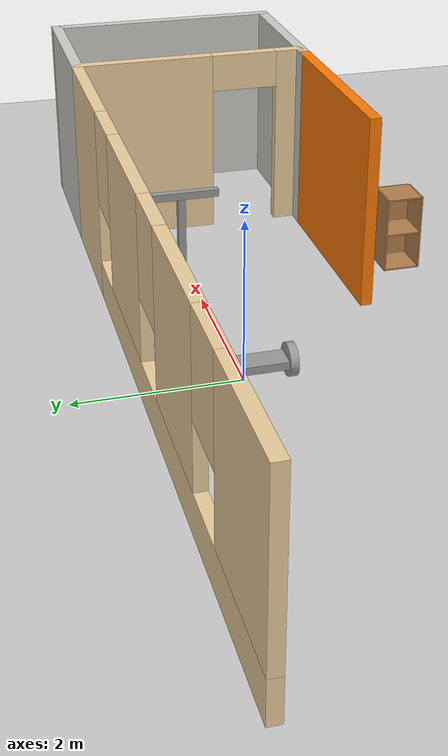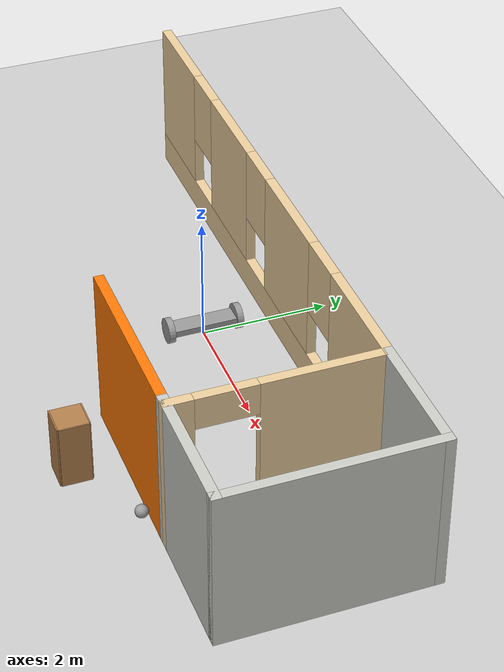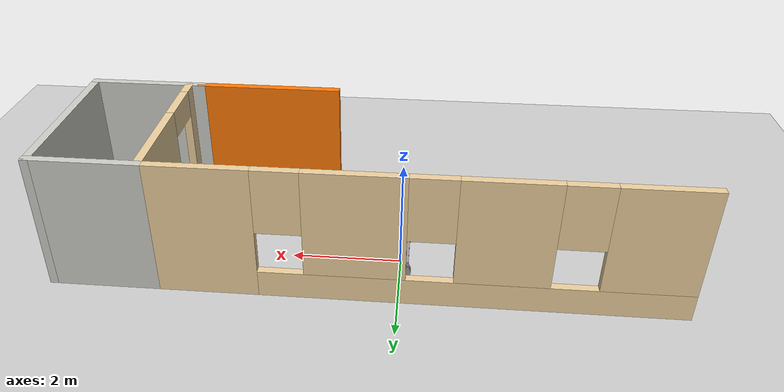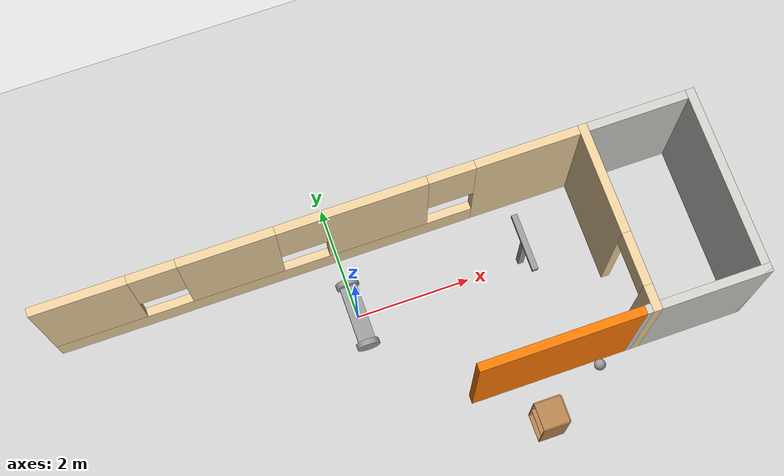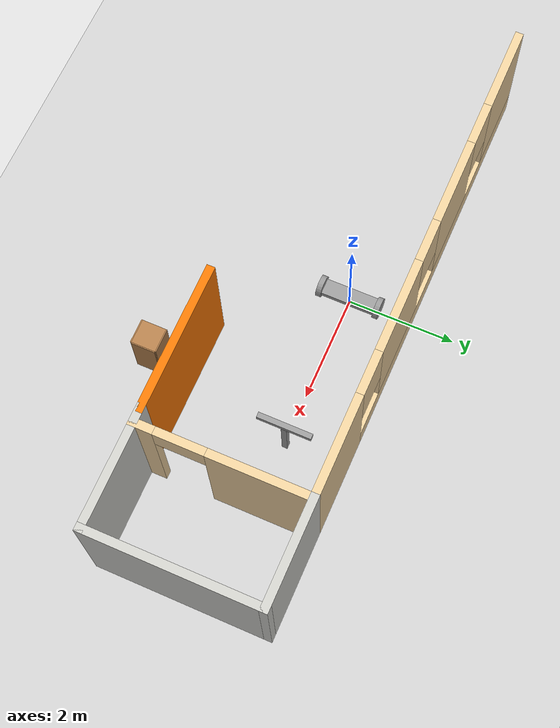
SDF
<sdf version="1.6">
 <world name="default">
  <model name="ground_plane">
   <static>1</static>
   <link name="link">
    <collision name="collision">
     <geometry><plane><normal>0 0 1</normal><size>100 100</size></plane></geometry>
     <surface>
      <contact><collide_bitmask>65535</collide_bitmask></contact>
      <friction><ode><mu>100</mu><mu2>50</mu2></ode></friction>
     </surface>
    </collision>
    <visual name="visual">
     <cast_shadows>0</cast_shadows>
     <geometry><plane><normal>0 0 1</normal><size>100 100</size></plane></geometry>
     <material>
      <script><uri>file://media/materials/scripts/gazebo.material</uri><name>Gazebo/Grey</name></script>
     </material>
    </visual>
   </link>
  </model>
  <model name="robot">
   <link name="link_0">
    <inertial>
     <mass>1.10599</mass>
     <inertia>
      <ixx>0.204905</ixx>
      <ixy>0</ixy>
      <ixz>0</ixz>
      <iyy>0.204905</iyy>
      <iyz>0</iyz>
      <izz>0.184332</izz>
     </inertia>
    </inertial>
    <visual name="visual">
     <geometry><box><size>0.3 1 0.1</size></box></geometry>
     <material>
      <lighting>1</lighting>
      <script><uri>file://media/materials/scripts/gazebo.material</uri><name>Gazebo/Grey</name></script>
      <shader type="pixel"><normal_map>__default__</normal_map></shader>
      <ambient>0.3 0.3 0.3 1</ambient>
      <diffuse>0.7 0.7 0.7 1</diffuse>
      <specular>0.01 0.01 0.01 1</specular>
      <emissive>0 0 0 1</emissive>
     </material>
    </visual>
    <collision name="collision">
     <geometry><box><size>0.3 1 0.1</size></box></geometry>
     <surface>
      <friction>
       <ode><mu>1</mu><mu2>1</mu2><fdir1>0 0 0</fdir1><slip1>0</slip1><slip2>0</slip2></ode>
       <torsional>
        <coefficient>1</coefficient>
        <patch_radius>0</patch_radius>
        <surface_radius>0</surface_radius>
        <use_patch_radius>1</use_patch_radius>
        <ode><slip>0</slip></ode>
       </torsional>
      </friction>
      <bounce><restitution_coefficient>0</restitution_coefficient><threshold>1e+06</threshold></bounce>
      <contact>
       <collide_without_contact>0</collide_without_contact>
       <collide_without_contact_bitmask>1</collide_without_contact_bitmask>
       <collide_bitmask>1</collide_bitmask>
       <ode>
        <soft_cfm>0</soft_cfm>
        <soft_erp>0.2</soft_erp>
        <kp>1e+13</kp>
        <kd>1</kd>
        <max_vel>0.01</max_vel>
        <min_depth>0</min_depth>
       </ode>
       <bullet>
        <split_impulse>1</split_impulse>
        <split_impulse_penetration_threshold>-0.01</split_impulse_penetration_threshold>
        <soft_cfm>0</soft_cfm>
        <soft_erp>0.2</soft_erp>
        <kp>1e+13</kp>
        <kd>1</kd>
       </bullet>
      </contact>
     </surface>
    </collision>
   </link>
   <link name="link_1">
    <pose>0 -0.550001 0 1.57079 -0 0</pose>
    <inertial>
     <mass>1</mass>
     <inertia><ixx>0.145833</ixx><ixy>0</ixy><ixz>0</ixz><iyy>0.145833</iyy><iyz>0</iyz><izz>0.125</izz></inertia>
    </inertial>
    <visual name="visual">
     <geometry><cylinder><radius>0.2</radius><length>0.1</length></cylinder></geometry>
     <material>
      <lighting>1</lighting>
      <script><uri>file://media/materials/scripts/gazebo.material</uri><name>Gazebo/Grey</name></script>
      <shader type="pixel"><normal_map>__default__</normal_map></shader>
      <ambient>0.3 0.3 0.3 1</ambient>
      <diffuse>0.7 0.7 0.7 1</diffuse>
      <specular>0.01 0.01 0.01 1</specular>
      <emissive>0 0 0 1</emissive>
     </material>
    </visual>
    <collision name="collision">
     <geometry><cylinder><radius>0.2</radius><length>0.1</length></cylinder></geometry>
     <surface>
      <friction>
       <ode><mu>1</mu><mu2>1</mu2><fdir1>0 0 0</fdir1><slip1>0</slip1><slip2>0</slip2></ode>
       <torsional>
        <coefficient>1</coefficient>
        <patch_radius>0</patch_radius>
        <surface_radius>0</surface_radius>
        <use_patch_radius>1</use_patch_radius>
        <ode><slip>0</slip></ode>
       </torsional>
      </friction>
      <bounce><restitution_coefficient>0</restitution_coefficient><threshold>1e+06</threshold></bounce>
      <contact>
       <collide_without_contact>0</collide_without_contact>
       <collide_without_contact_bitmask>1</collide_without_contact_bitmask>
       <collide_bitmask>1</collide_bitmask>
       <ode>
        <soft_cfm>0</soft_cfm>
        <soft_erp>0.2</soft_erp>
        <kp>1e+13</kp>
        <kd>1</kd>
        <max_vel>0.01</max_vel>
        <min_depth>0</min_depth>
       </ode>
       <bullet>
        <split_impulse>1</split_impulse>
        <split_impulse_penetration_threshold>-0.01</split_impulse_penetration_threshold>
        <soft_cfm>0</soft_cfm>
        <soft_erp>0.2</soft_erp>
        <kp>1e+13</kp>
        <kd>1</kd>
       </bullet>
      </contact>
     </surface>
    </collision>
   </link>
   <link name="link_1_clone">
    <pose>0 0.550001 0 1.57079 -0 0</pose>
    <inertial>
     <mass>1</mass>
     <inertia><ixx>0.145833</ixx><ixy>0</ixy><ixz>0</ixz><iyy>0.145833</iyy><iyz>0</iyz><izz>0.125</izz></inertia>
    </inertial>
    <visual name="visual">
     <geometry><cylinder><radius>0.2</radius><length>0.1</length></cylinder></geometry>
     <material>
      <lighting>1</lighting>
      <script><uri>file://media/materials/scripts/gazebo.material</uri><name>Gazebo/Grey</name></script>
      <shader type="pixel"><normal_map>__default__</normal_map></shader>
      <ambient>0.3 0.3 0.3 1</ambient>
      <diffuse>0.7 0.7 0.7 1</diffuse>
      <specular>0.01 0.01 0.01 1</specular>
      <emissive>0 0 0 1</emissive>
     </material>
    </visual>
    <collision name="collision">
     <geometry><cylinder><radius>0.2</radius><length>0.1</length></cylinder></geometry>
     <surface>
      <friction>
       <ode><mu>1</mu><mu2>1</mu2><fdir1>0 0 0</fdir1><slip1>0</slip1><slip2>0</slip2></ode>
       <torsional>
        <coefficient>1</coefficient>
        <patch_radius>0</patch_radius>
        <surface_radius>0</surface_radius>
        <use_patch_radius>1</use_patch_radius>
        <ode><slip>0</slip></ode>
       </torsional>
      </friction>
      <bounce><restitution_coefficient>0</restitution_coefficient><threshold>1e+06</threshold></bounce>
      <contact>
       <collide_without_contact>0</collide_without_contact>
       <collide_without_contact_bitmask>1</collide_without_contact_bitmask>
       <collide_bitmask>1</collide_bitmask>
       <ode>
        <soft_cfm>0</soft_cfm>
        <soft_erp>0.2</soft_erp>
        <kp>1e+13</kp>
        <kd>1</kd>
        <max_vel>0.01</max_vel>
        <min_depth>0</min_depth>
       </ode>
       <bullet>
        <split_impulse>1</split_impulse>
        <split_impulse_penetration_threshold>-0.01</split_impulse_penetration_threshold>
        <soft_cfm>0</soft_cfm>
        <soft_erp>0.2</soft_erp>
        <kp>1e+13</kp>
        <kd>1</kd>
       </bullet>
      </contact>
     </surface>
    </collision>
   </link>
   <joint name="link_0_JOINT_0" type="revolute">
    <parent>link_0</parent>
    <child>link_1</child>
    <axis>
     <xyz>0 0 1</xyz>
     <use_parent_model_frame>0</use_parent_model_frame>
     <limit>
      <lower>-1.79769e+308</lower>
      <upper>1.79769e+308</upper>
      <effort>-1</effort>
      <velocity>-1</velocity>
     </limit>
     <dynamics>
      <spring_reference>0</spring_reference>
      <spring_stiffness>0</spring_stiffness>
      <damping>0</damping>
     </dynamics>
    </axis>
    <physics>
     <ode><limit><cfm>0</cfm><erp>0.2</erp></limit><suspension><cfm>0</cfm><erp>0.2</erp></suspension></ode>
    </physics>
   </joint>
   <joint name="link_0_JOINT_1" type="revolute">
    <parent>link_0</parent>
    <child>link_1_clone</child>
    <axis>
     <xyz>0 0 1</xyz>
     <use_parent_model_frame>0</use_parent_model_frame>
     <limit>
      <lower>-1.79769e+308</lower>
      <upper>1.79769e+308</upper>
      <effort>-1</effort>
      <velocity>-1</velocity>
     </limit>
     <dynamics>
      <spring_reference>0</spring_reference>
      <spring_stiffness>0</spring_stiffness>
      <damping>0</damping>
     </dynamics>
    </axis>
    <physics>
     <ode><limit><cfm>0</cfm><erp>0.2</erp></limit><suspension><cfm>0</cfm><erp>0.2</erp></suspension></ode>
    </physics>
   </joint>
   <static>0</static>
   <pose>0 -1e-06 0.2 0 -0 0</pose>
  </model>
  <model name="anotherrone_clone_0">
   <link name="link_0_clone">
    <pose>1.00397 -1.20326 1.05 1.57079 -0 0</pose>
    <inertial>
     <mass>1</mass>
     <inertia>
      <ixx>0.166667</ixx>
      <ixy>0</ixy>
      <ixz>0</ixz>
      <iyy>0.166667</iyy>
      <iyz>0</iyz>
      <izz>0.166667</izz>
     </inertia>
    </inertial>
    <visual name="visual">
     <geometry><box><size>0.1 0.1 1</size></box></geometry>
     <material>
      <lighting>1</lighting>
      <script><uri>file://media/materials/scripts/gazebo.material</uri><name>Gazebo/Grey</name></script>
      <shader type="pixel"><normal_map>__default__</normal_map></shader>
      <ambient>0.3 0.3 0.3 1</ambient>
      <diffuse>0.7 0.7 0.7 1</diffuse>
      <specular>0.01 0.01 0.01 1</specular>
      <emissive>0 0 0 1</emissive>
     </material>
    </visual>
    <collision name="collision">
     <geometry><box><size>0.1 0.1 1</size></box></geometry>
     <surface>
      <friction>
       <ode><mu>1</mu><mu2>1</mu2><fdir1>0 0 0</fdir1><slip1>0</slip1><slip2>0</slip2></ode>
       <torsional>
        <coefficient>1</coefficient>
        <patch_radius>0</patch_radius>
        <surface_radius>0</surface_radius>
        <use_patch_radius>1</use_patch_radius>
        <ode><slip>0</slip></ode>
       </torsional>
      </friction>
      <bounce><restitution_coefficient>0</restitution_coefficient><threshold>1e+06</threshold></bounce>
      <contact>
       <collide_without_contact>0</collide_without_contact>
       <collide_without_contact_bitmask>1</collide_without_contact_bitmask>
       <collide_bitmask>1</collide_bitmask>
       <ode>
        <soft_cfm>0</soft_cfm>
        <soft_erp>0.2</soft_erp>
        <kp>1e+13</kp>
        <kd>1</kd>
        <max_vel>0.01</max_vel>
        <min_depth>0</min_depth>
       </ode>
       <bullet>
        <split_impulse>1</split_impulse>
        <split_impulse_penetration_threshold>-0.01</split_impulse_penetration_threshold>
        <soft_cfm>0</soft_cfm>
        <soft_erp>0.2</soft_erp>
        <kp>1e+13</kp>
        <kd>1</kd>
       </bullet>
      </contact>
     </surface>
    </collision>
   </link>
   <link name="link_0_clone_clone">
    <pose>1.00397 -1.20326 0.499999 0 -0 0</pose>
    <inertial>
     <mass>1</mass>
     <inertia>
      <ixx>0.166667</ixx>
      <ixy>0</ixy>
      <ixz>0</ixz>
      <iyy>0.166667</iyy>
      <iyz>0</iyz>
      <izz>0.166667</izz>
     </inertia>
    </inertial>
    <visual name="visual">
     <geometry><box><size>0.1 0.1 1</size></box></geometry>
     <material>
      <lighting>1</lighting>
      <script><uri>file://media/materials/scripts/gazebo.material</uri><name>Gazebo/Grey</name></script>
      <shader type="pixel"><normal_map>__default__</normal_map></shader>
      <ambient>0.3 0.3 0.3 1</ambient>
      <diffuse>0.7 0.7 0.7 1</diffuse>
      <specular>0.01 0.01 0.01 1</specular>
      <emissive>0 0 0 1</emissive>
     </material>
    </visual>
    <collision name="collision">
     <geometry><box><size>0.1 0.1 1</size></box></geometry>
     <surface>
      <friction>
       <ode><mu>1</mu><mu2>1</mu2><fdir1>0 0 0</fdir1><slip1>0</slip1><slip2>0</slip2></ode>
       <torsional>
        <coefficient>1</coefficient>
        <patch_radius>0</patch_radius>
        <surface_radius>0</surface_radius>
        <use_patch_radius>1</use_patch_radius>
        <ode><slip>0</slip></ode>
       </torsional>
      </friction>
      <bounce><restitution_coefficient>0</restitution_coefficient><threshold>1e+06</threshold></bounce>
      <contact>
       <collide_without_contact>0</collide_without_contact>
       <collide_without_contact_bitmask>1</collide_without_contact_bitmask>
       <collide_bitmask>1</collide_bitmask>
       <ode>
        <soft_cfm>0</soft_cfm>
        <soft_erp>0.2</soft_erp>
        <kp>1e+13</kp>
        <kd>1</kd>
        <max_vel>0.01</max_vel>
        <min_depth>0</min_depth>
       </ode>
       <bullet>
        <split_impulse>1</split_impulse>
        <split_impulse_penetration_threshold>-0.01</split_impulse_penetration_threshold>
        <soft_cfm>0</soft_cfm>
        <soft_erp>0.2</soft_erp>
        <kp>1e+13</kp>
        <kd>1</kd>
       </bullet>
      </contact>
     </surface>
    </collision>
   </link>
   <joint name="link_0_clone_clone_JOINT_0" type="revolute">
    <parent>link_0_clone_clone</parent>
    <child>link_0_clone</child>
    <axis>
     <xyz>0 -1 0</xyz>
     <use_parent_model_frame>0</use_parent_model_frame>
     <limit>
      <lower>-1.79769e+308</lower>
      <upper>1.79769e+308</upper>
      <effort>-1</effort>
      <velocity>-1</velocity>
     </limit>
     <dynamics>
      <spring_reference>0</spring_reference>
      <spring_stiffness>0</spring_stiffness>
      <damping>0</damping>
     </dynamics>
    </axis>
    <physics>
     <ode><limit><cfm>0</cfm><erp>0.2</erp></limit><suspension><cfm>0</cfm><erp>0.2</erp></suspension></ode>
    </physics>
   </joint>
   <static>0</static>
   <pose>1.95544 1.23394 1e-05 4e-06 4e-06 4.4e-05</pose>
  </model>
  <model name="my_ball">
   <link name="link">
    <inertial>
     <mass>1</mass>
     <inertia><ixx>0.1</ixx><ixy>0</ixy><ixz>0</ixz><iyy>0.1</iyy><iyz>0</iyz><izz>0.1</izz></inertia>
    </inertial>
    <visual name="visual">
     <geometry><sphere><radius>0.1</radius></sphere></geometry>
     <material>
      <script><name>Gazebo/Grey</name><uri>file://media/materials/scripts/gazebo.material</uri></script>
      <shader type="pixel"><normal_map>__default__</normal_map></shader>
      <ambient>1 1 1 1</ambient>
      <diffuse>1 1 1 1</diffuse>
      <specular>1 1 1 1</specular>
      <emissive>1 1 1 1</emissive>
     </material>
    </visual>
    <collision name="collision">
     <geometry><sphere><radius>0.1</radius></sphere></geometry>
     <surface>
      <friction>
       <ode><mu>1</mu><mu2>1</mu2><fdir1>0 0 0</fdir1><slip1>0</slip1><slip2>0</slip2></ode>
       <torsional>
        <coefficient>1</coefficient>
        <patch_radius>0</patch_radius>
        <surface_radius>0</surface_radius>
        <use_patch_radius>1</use_patch_radius>
        <ode><slip>0</slip></ode>
       </torsional>
      </friction>
      <bounce><restitution_coefficient>0</restitution_coefficient><threshold>1e+06</threshold></bounce>
      <contact>
       <collide_without_contact>0</collide_without_contact>
       <collide_without_contact_bitmask>1</collide_without_contact_bitmask>
       <collide_bitmask>1</collide_bitmask>
       <ode>
        <soft_cfm>0</soft_cfm>
        <soft_erp>0.2</soft_erp>
        <kp>1e+13</kp>
        <kd>1</kd>
        <max_vel>0.01</max_vel>
        <min_depth>0</min_depth>
       </ode>
       <bullet>
        <split_impulse>1</split_impulse>
        <split_impulse_penetration_threshold>-0.01</split_impulse_penetration_threshold>
        <soft_cfm>0</soft_cfm>
        <soft_erp>0.2</soft_erp>
        <kp>1e+13</kp>
        <kd>1</kd>
       </bullet>
      </contact>
     </surface>
    </collision>
   </link>
   <static>0</static>
   <pose>3.57794 -2.15315 0.1 0.017034 -0 0</pose>
  </model>
  <model name="cabinet">
   <static>1</static>
   <link name="cabinet_bottom_plate">
    <inertial>
     <pose>0 0 -1 0 -0 0</pose>
     <inertia><ixx>2.05</ixx><ixy>0</ixy><ixz>0</ixz><iyy>2.05</iyy><iyz>0</iyz><izz>2.05</izz></inertia>
     <mass>25</mass>
    </inertial>
    <collision name="cabinet_bottom_plate_geom">
     <pose>0 0 0.01 0 -0 0</pose>
     <geometry><box><size>0.45 0.45 0.02</size></box></geometry>
    </collision>
    <visual name="cabinet_bottom_plate_geom_visual">
     <pose>0 0 0.01 0 -0 0</pose>
     <geometry><box><size>0.45 0.45 0.02</size></box></geometry>
     <material>
      <script><uri>file://media/materials/scripts/gazebo.material</uri><name>Gazebo/Wood</name></script>
     </material>
    </visual>
    <collision name="cabinet_bottom_plate_geom_cabinet_back_plate">
     <pose>0.235 0 0.51 0 -0 0</pose>
     <geometry><box><size>0.02 0.45 1.02</size></box></geometry>
    </collision>
    <visual name="cabinet_bottom_plate_geom_cabinet_back_plate_visual">
     <pose>0.235 0 0.51 0 -0 0</pose>
     <geometry><box><size>0.02 0.45 1.02</size></box></geometry>
     <material>
      <script><uri>file://media/materials/scripts/gazebo.material</uri><name>Gazebo/Wood</name></script>
     </material>
    </visual>
    <collision name="cabinet_bottom_plate_geom_cabinet_left_plate">
     <pose>0 0.235 0.51 0 -0 0</pose>
     <geometry><box><size>0.45 0.02 1.02</size></box></geometry>
    </collision>
    <visual name="cabinet_bottom_plate_geom_cabinet_left_plate_visual">
     <pose>0 0.235 0.51 0 -0 0</pose>
     <geometry><box><size>0.45 0.02 1.02</size></box></geometry>
     <material>
      <script><uri>file://media/materials/scripts/gazebo.material</uri><name>Gazebo/Wood</name></script>
     </material>
    </visual>
    <collision name="cabinet_bottom_plate_geom_cabinet_middle_plate">
     <pose>0 0 0.51 0 -0 0</pose>
     <geometry><box><size>0.45 0.45 0.02</size></box></geometry>
    </collision>
    <visual name="cabinet_bottom_plate_geom_cabinet_middle_plate_visual">
     <pose>0 0 0.51 0 -0 0</pose>
     <geometry><box><size>0.45 0.45 0.02</size></box></geometry>
     <material>
      <script><uri>file://media/materials/scripts/gazebo.material</uri><name>Gazebo/Wood</name></script>
     </material>
    </visual>
    <collision name="cabinet_bottom_plate_geom_cabinet_right_plate">
     <pose>0 -0.235 0.51 0 -0 0</pose>
     <geometry><box><size>0.45 0.02 1.02</size></box></geometry>
    </collision>
    <visual name="cabinet_bottom_plate_geom_cabinet_right_plate_visual">
     <pose>0 -0.235 0.51 0 -0 0</pose>
     <geometry><box><size>0.45 0.02 1.02</size></box></geometry>
     <material>
      <script><uri>file://media/materials/scripts/gazebo.material</uri><name>Gazebo/Wood</name></script>
     </material>
    </visual>
    <collision name="cabinet_bottom_plate_geom_cabinet_top_plate">
     <pose>0 0 1.01 0 -0 0</pose>
     <geometry><box><size>0.45 0.45 0.02</size></box></geometry>
    </collision>
    <visual name="cabinet_bottom_plate_geom_cabinet_top_plate_visual">
     <pose>0 0 1.01 0 -0 0</pose>
     <geometry><box><size>0.45 0.45 0.02</size></box></geometry>
     <material>
      <script><uri>file://media/materials/scripts/gazebo.material</uri><name>Gazebo/Wood</name></script>
     </material>
    </visual>
   </link>
   <pose>2.37507 -2.78574 0 0 -0 0</pose>
  </model>
  <model name="someHouse">
   <link name="Wall_26">
    <pose>3.375 1.05 0 0 -0 3.14159</pose>
    <visual name="Wall_26_Visual">
     <pose>0 0 1.25 0 -0 0</pose>
     <geometry><box><size>2.75 0.15 2.5</size></box></geometry>
     <material>
      <script><uri>file://media/materials/scripts/gazebo.material</uri><name>Gazebo/Grey</name></script>
      <ambient>0.996078 0.47451 0.0196078 1</ambient>
      <shader type="pixel"/>
      <diffuse>0.7 0.7 0.7 1</diffuse>
      <specular>0.01 0.01 0.01 1</specular>
      <emissive>0 0 0 1</emissive>
     </material>
     <meta><layer>0</layer></meta>
    </visual>
    <collision name="Wall_26_Collision">
     <pose>0 0 1.25 0 -0 0</pose>
     <geometry><box><size>2.75 0.15 2.5</size></box></geometry>
     <surface>
      <friction>
       <ode><mu>1</mu><mu2>1</mu2><fdir1>0 0 0</fdir1><slip1>0</slip1><slip2>0</slip2></ode>
       <torsional>
        <coefficient>1</coefficient>
        <patch_radius>0</patch_radius>
        <surface_radius>0</surface_radius>
        <use_patch_radius>1</use_patch_radius>
        <ode><slip>0</slip></ode>
       </torsional>
      </friction>
      <bounce><restitution_coefficient>0</restitution_coefficient><threshold>1e+06</threshold></bounce>
      <contact>
       <collide_without_contact>0</collide_without_contact>
       <collide_without_contact_bitmask>1</collide_without_contact_bitmask>
       <collide_bitmask>1</collide_bitmask>
       <ode>
        <soft_cfm>0</soft_cfm>
        <soft_erp>0.2</soft_erp>
        <kp>1e+13</kp>
        <kd>1</kd>
        <max_vel>0.01</max_vel>
        <min_depth>0</min_depth>
       </ode>
       <bullet>
        <split_impulse>1</split_impulse>
        <split_impulse_penetration_threshold>-0.01</split_impulse_penetration_threshold>
        <soft_cfm>0</soft_cfm>
        <soft_erp>0.2</soft_erp>
        <kp>1e+13</kp>
        <kd>1</kd>
       </bullet>
      </contact>
     </surface>
    </collision>
   </link>
   <link name="Wall_32">
    <pose>5.725 1.05 0 0 -0 0</pose>
    <visual name="Wall_32_Visual">
     <pose>0 0 1.25 0 -0 0</pose>
     <geometry><box><size>2.25 0.15 2.5</size></box></geometry>
     <material>
      <script><uri>file://media/materials/scripts/gazebo.material</uri><name>Gazebo/CeilingTiled</name></script>
      <ambient>0.760784 0.662745 0.627451 1</ambient>
      <shader type="pixel"/>
      <diffuse>1 1 1 1</diffuse>
      <specular>0 0 0 1</specular>
      <emissive>0 0 0 1</emissive>
     </material>
     <meta><layer>0</layer></meta>
    </visual>
    <collision name="Wall_32_Collision">
     <pose>0 0 1.25 0 -0 0</pose>
     <geometry><box><size>2.25 0.15 2.5</size></box></geometry>
     <surface>
      <friction>
       <ode><mu>1</mu><mu2>1</mu2><fdir1>0 0 0</fdir1><slip1>0</slip1><slip2>0</slip2></ode>
       <torsional>
        <coefficient>1</coefficient>
        <patch_radius>0</patch_radius>
        <surface_radius>0</surface_radius>
        <use_patch_radius>1</use_patch_radius>
        <ode><slip>0</slip></ode>
       </torsional>
      </friction>
      <bounce><restitution_coefficient>0</restitution_coefficient><threshold>1e+06</threshold></bounce>
      <contact>
       <collide_without_contact>0</collide_without_contact>
       <collide_without_contact_bitmask>1</collide_without_contact_bitmask>
       <collide_bitmask>1</collide_bitmask>
       <ode>
        <soft_cfm>0</soft_cfm>
        <soft_erp>0.2</soft_erp>
        <kp>1e+13</kp>
        <kd>1</kd>
        <max_vel>0.01</max_vel>
        <min_depth>0</min_depth>
       </ode>
       <bullet>
        <split_impulse>1</split_impulse>
        <split_impulse_penetration_threshold>-0.01</split_impulse_penetration_threshold>
        <soft_cfm>0</soft_cfm>
        <soft_erp>0.2</soft_erp>
        <kp>1e+13</kp>
        <kd>1</kd>
       </bullet>
      </contact>
     </surface>
    </collision>
   </link>
   <link name="Wall_33">
    <pose>6.775 2.6 0 0 -0 1.5708</pose>
    <visual name="Wall_33_Visual">
     <pose>0 0 1.25 0 -0 0</pose>
     <geometry><box><size>3.25 0.15 2.5</size></box></geometry>
     <material>
      <script><uri>file://media/materials/scripts/gazebo.material</uri><name>Gazebo/CeilingTiled</name></script>
      <ambient>0.760784 0.662745 0.627451 1</ambient>
      <shader type="pixel"/>
      <diffuse>1 1 1 1</diffuse>
      <specular>0 0 0 1</specular>
      <emissive>0 0 0 1</emissive>
     </material>
     <meta><layer>0</layer></meta>
    </visual>
    <collision name="Wall_33_Collision">
     <pose>0 0 1.25 0 -0 0</pose>
     <geometry><box><size>3.25 0.15 2.5</size></box></geometry>
     <surface>
      <friction>
       <ode><mu>1</mu><mu2>1</mu2><fdir1>0 0 0</fdir1><slip1>0</slip1><slip2>0</slip2></ode>
       <torsional>
        <coefficient>1</coefficient>
        <patch_radius>0</patch_radius>
        <surface_radius>0</surface_radius>
        <use_patch_radius>1</use_patch_radius>
        <ode><slip>0</slip></ode>
       </torsional>
      </friction>
      <bounce><restitution_coefficient>0</restitution_coefficient><threshold>1e+06</threshold></bounce>
      <contact>
       <collide_without_contact>0</collide_without_contact>
       <collide_without_contact_bitmask>1</collide_without_contact_bitmask>
       <collide_bitmask>1</collide_bitmask>
       <ode>
        <soft_cfm>0</soft_cfm>
        <soft_erp>0.2</soft_erp>
        <kp>1e+13</kp>
        <kd>1</kd>
        <max_vel>0.01</max_vel>
        <min_depth>0</min_depth>
       </ode>
       <bullet>
        <split_impulse>1</split_impulse>
        <split_impulse_penetration_threshold>-0.01</split_impulse_penetration_threshold>
        <soft_cfm>0</soft_cfm>
        <soft_erp>0.2</soft_erp>
        <kp>1e+13</kp>
        <kd>1</kd>
       </bullet>
      </contact>
     </surface>
    </collision>
   </link>
   <link name="Wall_34">
    <pose>5.85 4.15 0 0 -0 3.14159</pose>
    <visual name="Wall_34_Visual">
     <pose>0 0 1.25 0 -0 0</pose>
     <geometry><box><size>2 0.15 2.5</size></box></geometry>
     <material>
      <script><uri>file://media/materials/scripts/gazebo.material</uri><name>Gazebo/CeilingTiled</name></script>
      <ambient>0.760784 0.662745 0.627451 1</ambient>
      <shader type="pixel"/>
      <diffuse>1 1 1 1</diffuse>
      <specular>0 0 0 1</specular>
      <emissive>0 0 0 1</emissive>
     </material>
     <meta><layer>0</layer></meta>
    </visual>
    <collision name="Wall_34_Collision">
     <pose>0 0 1.25 0 -0 0</pose>
     <geometry><box><size>2 0.15 2.5</size></box></geometry>
     <surface>
      <friction>
       <ode><mu>1</mu><mu2>1</mu2><fdir1>0 0 0</fdir1><slip1>0</slip1><slip2>0</slip2></ode>
       <torsional>
        <coefficient>1</coefficient>
        <patch_radius>0</patch_radius>
        <surface_radius>0</surface_radius>
        <use_patch_radius>1</use_patch_radius>
        <ode><slip>0</slip></ode>
       </torsional>
      </friction>
      <bounce><restitution_coefficient>0</restitution_coefficient><threshold>1e+06</threshold></bounce>
      <contact>
       <collide_without_contact>0</collide_without_contact>
       <collide_without_contact_bitmask>1</collide_without_contact_bitmask>
       <collide_bitmask>1</collide_bitmask>
       <ode>
        <soft_cfm>0</soft_cfm>
        <soft_erp>0.2</soft_erp>
        <kp>1e+13</kp>
        <kd>1</kd>
        <max_vel>0.01</max_vel>
        <min_depth>0</min_depth>
       </ode>
       <bullet>
        <split_impulse>1</split_impulse>
        <split_impulse_penetration_threshold>-0.01</split_impulse_penetration_threshold>
        <soft_cfm>0</soft_cfm>
        <soft_erp>0.2</soft_erp>
        <kp>1e+13</kp>
        <kd>1</kd>
       </bullet>
      </contact>
     </surface>
    </collision>
   </link>
   <link name="Wall_35">
    <pose>4.925 2.6 0 0 0 -1.5708</pose>
    <visual name="Wall_35_Visual_0">
     <pose>-0.668512 0 1.25 0 -0 0</pose>
     <geometry><box><size>1.91298 0.15 2.5</size></box></geometry>
     <material>
      <script><uri>file://media/materials/scripts/gazebo.material</uri><name>Gazebo/Grey</name></script>
      <ambient>0.921569 0.807843 0.615686 1</ambient>
      <shader type="pixel"/>
      <diffuse>0.7 0.7 0.7 1</diffuse>
      <specular>0.01 0.01 0.01 1</specular>
      <emissive>0 0 0 1</emissive>
     </material>
     <meta><layer>0</layer></meta>
    </visual>
    <visual name="Wall_35_Visual_1">
     <pose>1.40649 0 1.25 0 -0 0</pose>
     <geometry><box><size>0.437025 0.15 2.5</size></box></geometry>
     <material>
      <script><uri>file://media/materials/scripts/gazebo.material</uri><name>Gazebo/Grey</name></script>
      <ambient>0.921569 0.807843 0.615686 1</ambient>
      <shader type="pixel"/>
      <diffuse>0.7 0.7 0.7 1</diffuse>
      <specular>0.01 0.01 0.01 1</specular>
      <emissive>0 0 0 1</emissive>
     </material>
     <meta><layer>0</layer></meta>
    </visual>
    <visual name="Wall_35_Visual_2">
     <pose>0.737975 0 2.25 0 -0 0</pose>
     <geometry><box><size>0.9 0.15 0.5</size></box></geometry>
     <material>
      <script><uri>file://media/materials/scripts/gazebo.material</uri><name>Gazebo/Grey</name></script>
      <ambient>0.921569 0.807843 0.615686 1</ambient>
      <shader type="pixel"/>
      <diffuse>0.7 0.7 0.7 1</diffuse>
      <specular>0.01 0.01 0.01 1</specular>
      <emissive>0 0 0 1</emissive>
     </material>
     <meta><layer>0</layer></meta>
    </visual>
    <collision name="Wall_35_Collision_0">
     <pose>-0.668512 0 1.25 0 -0 0</pose>
     <geometry><box><size>1.91298 0.15 2.5</size></box></geometry>
     <surface>
      <friction>
       <ode><mu>1</mu><mu2>1</mu2><fdir1>0 0 0</fdir1><slip1>0</slip1><slip2>0</slip2></ode>
       <torsional>
        <coefficient>1</coefficient>
        <patch_radius>0</patch_radius>
        <surface_radius>0</surface_radius>
        <use_patch_radius>1</use_patch_radius>
        <ode><slip>0</slip></ode>
       </torsional>
      </friction>
      <bounce><restitution_coefficient>0</restitution_coefficient><threshold>1e+06</threshold></bounce>
      <contact>
       <collide_without_contact>0</collide_without_contact>
       <collide_without_contact_bitmask>1</collide_without_contact_bitmask>
       <collide_bitmask>1</collide_bitmask>
       <ode>
        <soft_cfm>0</soft_cfm>
        <soft_erp>0.2</soft_erp>
        <kp>1e+13</kp>
        <kd>1</kd>
        <max_vel>0.01</max_vel>
        <min_depth>0</min_depth>
       </ode>
       <bullet>
        <split_impulse>1</split_impulse>
        <split_impulse_penetration_threshold>-0.01</split_impulse_penetration_threshold>
        <soft_cfm>0</soft_cfm>
        <soft_erp>0.2</soft_erp>
        <kp>1e+13</kp>
        <kd>1</kd>
       </bullet>
      </contact>
     </surface>
    </collision>
    <collision name="Wall_35_Collision_1">
     <pose>1.40649 0 1.25 0 -0 0</pose>
     <geometry><box><size>0.437025 0.15 2.5</size></box></geometry>
     <surface>
      <friction>
       <ode><mu>1</mu><mu2>1</mu2><fdir1>0 0 0</fdir1><slip1>0</slip1><slip2>0</slip2></ode>
       <torsional>
        <coefficient>1</coefficient>
        <patch_radius>0</patch_radius>
        <surface_radius>0</surface_radius>
        <use_patch_radius>1</use_patch_radius>
        <ode><slip>0</slip></ode>
       </torsional>
      </friction>
      <bounce><restitution_coefficient>0</restitution_coefficient><threshold>1e+06</threshold></bounce>
      <contact>
       <collide_without_contact>0</collide_without_contact>
       <collide_without_contact_bitmask>1</collide_without_contact_bitmask>
       <collide_bitmask>1</collide_bitmask>
       <ode>
        <soft_cfm>0</soft_cfm>
        <soft_erp>0.2</soft_erp>
        <kp>1e+13</kp>
        <kd>1</kd>
        <max_vel>0.01</max_vel>
        <min_depth>0</min_depth>
       </ode>
       <bullet>
        <split_impulse>1</split_impulse>
        <split_impulse_penetration_threshold>-0.01</split_impulse_penetration_threshold>
        <soft_cfm>0</soft_cfm>
        <soft_erp>0.2</soft_erp>
        <kp>1e+13</kp>
        <kd>1</kd>
       </bullet>
      </contact>
     </surface>
    </collision>
    <collision name="Wall_35_Collision_2">
     <pose>0.737975 0 2.25 0 -0 0</pose>
     <geometry><box><size>0.9 0.15 0.5</size></box></geometry>
     <surface>
      <friction>
       <ode><mu>1</mu><mu2>1</mu2><fdir1>0 0 0</fdir1><slip1>0</slip1><slip2>0</slip2></ode>
       <torsional>
        <coefficient>1</coefficient>
        <patch_radius>0</patch_radius>
        <surface_radius>0</surface_radius>
        <use_patch_radius>1</use_patch_radius>
        <ode><slip>0</slip></ode>
       </torsional>
      </friction>
      <bounce><restitution_coefficient>0</restitution_coefficient><threshold>1e+06</threshold></bounce>
      <contact>
       <collide_without_contact>0</collide_without_contact>
       <collide_without_contact_bitmask>1</collide_without_contact_bitmask>
       <collide_bitmask>1</collide_bitmask>
       <ode>
        <soft_cfm>0</soft_cfm>
        <soft_erp>0.2</soft_erp>
        <kp>1e+13</kp>
        <kd>1</kd>
        <max_vel>0.01</max_vel>
        <min_depth>0</min_depth>
       </ode>
       <bullet>
        <split_impulse>1</split_impulse>
        <split_impulse_penetration_threshold>-0.01</split_impulse_penetration_threshold>
        <soft_cfm>0</soft_cfm>
        <soft_erp>0.2</soft_erp>
        <kp>1e+13</kp>
        <kd>1</kd>
       </bullet>
      </contact>
     </surface>
    </collision>
   </link>
   <link name="Wall_37">
    <pose>0.375 4.15 0 0 -0 3.14159</pose>
    <visual name="Wall_37_Visual_0">
     <pose>-3.66804 0 1.25 0 -0 0</pose>
     <geometry><box><size>1.91392 0.15 2.5</size></box></geometry>
     <material>
      <script><uri>file://media/materials/scripts/gazebo.material</uri><name>Gazebo/Grey</name></script>
      <ambient>0.921569 0.807843 0.615686 1</ambient>
      <shader type="pixel"/>
      <diffuse>0.7 0.7 0.7 1</diffuse>
      <specular>0.01 0.01 0.01 1</specular>
      <emissive>0 0 0 1</emissive>
     </material>
     <meta><layer>0</layer></meta>
    </visual>
    <visual name="Wall_37_Visual_1">
     <pose>0.95696 0 0.25 0 -0 0</pose>
     <geometry><box><size>7.33608 0.15 0.5</size></box></geometry>
     <material>
      <script><uri>file://media/materials/scripts/gazebo.material</uri><name>Gazebo/Grey</name></script>
      <ambient>0.921569 0.807843 0.615686 1</ambient>
      <shader type="pixel"/>
      <diffuse>0.7 0.7 0.7 1</diffuse>
      <specular>0.01 0.01 0.01 1</specular>
      <emissive>0 0 0 1</emissive>
     </material>
     <meta><layer>0</layer></meta>
    </visual>
    <visual name="Wall_37_Visual_2">
     <pose>-1.04305 0 1.5 0 -0 0</pose>
     <geometry><box><size>1.73606 0.15 2</size></box></geometry>
     <material>
      <script><uri>file://media/materials/scripts/gazebo.material</uri><name>Gazebo/Grey</name></script>
      <ambient>0.921569 0.807843 0.615686 1</ambient>
      <shader type="pixel"/>
      <diffuse>0.7 0.7 0.7 1</diffuse>
      <specular>0.01 0.01 0.01 1</specular>
      <emissive>0 0 0 1</emissive>
     </material>
     <meta><layer>0</layer></meta>
    </visual>
    <visual name="Wall_37_Visual_3">
     <pose>1.43179 0 1.5 0 -0 0</pose>
     <geometry><box><size>1.61363 0.15 2</size></box></geometry>
     <material>
      <script><uri>file://media/materials/scripts/gazebo.material</uri><name>Gazebo/Grey</name></script>
      <ambient>0.921569 0.807843 0.615686 1</ambient>
      <shader type="pixel"/>
      <diffuse>0.7 0.7 0.7 1</diffuse>
      <specular>0.01 0.01 0.01 1</specular>
      <emissive>0 0 0 1</emissive>
     </material>
     <meta><layer>0</layer></meta>
    </visual>
    <visual name="Wall_37_Visual_4">
     <pose>3.8318 0 1.5 0 -0 0</pose>
     <geometry><box><size>1.58639 0.15 2</size></box></geometry>
     <material>
      <script><uri>file://media/materials/scripts/gazebo.material</uri><name>Gazebo/Grey</name></script>
      <ambient>0.921569 0.807843 0.615686 1</ambient>
      <shader type="pixel"/>
      <diffuse>0.7 0.7 0.7 1</diffuse>
      <specular>0.01 0.01 0.01 1</specular>
      <emissive>0 0 0 1</emissive>
     </material>
     <meta><layer>0</layer></meta>
    </visual>
    <visual name="Wall_37_Visual_5">
     <pose>-2.31108 0 1.9 0 -0 0</pose>
     <geometry><box><size>0.8 0.15 1.2</size></box></geometry>
     <material>
      <script><uri>file://media/materials/scripts/gazebo.material</uri><name>Gazebo/Grey</name></script>
      <ambient>0.921569 0.807843 0.615686 1</ambient>
      <shader type="pixel"/>
      <diffuse>0.7 0.7 0.7 1</diffuse>
      <specular>0.01 0.01 0.01 1</specular>
      <emissive>0 0 0 1</emissive>
     </material>
     <meta><layer>0</layer></meta>
    </visual>
    <visual name="Wall_37_Visual_6">
     <pose>0.224979 0 1.9 0 -0 0</pose>
     <geometry><box><size>0.8 0.15 1.2</size></box></geometry>
     <material>
      <script><uri>file://media/materials/scripts/gazebo.material</uri><name>Gazebo/Grey</name></script>
      <ambient>0.921569 0.807843 0.615686 1</ambient>
      <shader type="pixel"/>
      <diffuse>0.7 0.7 0.7 1</diffuse>
      <specular>0.01 0.01 0.01 1</specular>
      <emissive>0 0 0 1</emissive>
     </material>
     <meta><layer>0</layer></meta>
    </visual>
    <visual name="Wall_37_Visual_7">
     <pose>2.63861 0 1.9 0 -0 0</pose>
     <geometry><box><size>0.8 0.15 1.2</size></box></geometry>
     <material>
      <script><uri>file://media/materials/scripts/gazebo.material</uri><name>Gazebo/Grey</name></script>
      <ambient>0.921569 0.807843 0.615686 1</ambient>
      <shader type="pixel"/>
      <diffuse>0.7 0.7 0.7 1</diffuse>
      <specular>0.01 0.01 0.01 1</specular>
      <emissive>0 0 0 1</emissive>
     </material>
     <meta><layer>0</layer></meta>
    </visual>
    <collision name="Wall_37_Collision_0">
     <pose>-3.66804 0 1.25 0 -0 0</pose>
     <geometry><box><size>1.91392 0.15 2.5</size></box></geometry>
     <surface>
      <friction>
       <ode><mu>1</mu><mu2>1</mu2><fdir1>0 0 0</fdir1><slip1>0</slip1><slip2>0</slip2></ode>
       <torsional>
        <coefficient>1</coefficient>
        <patch_radius>0</patch_radius>
        <surface_radius>0</surface_radius>
        <use_patch_radius>1</use_patch_radius>
        <ode><slip>0</slip></ode>
       </torsional>
      </friction>
      <bounce><restitution_coefficient>0</restitution_coefficient><threshold>1e+06</threshold></bounce>
      <contact>
       <collide_without_contact>0</collide_without_contact>
       <collide_without_contact_bitmask>1</collide_without_contact_bitmask>
       <collide_bitmask>1</collide_bitmask>
       <ode>
        <soft_cfm>0</soft_cfm>
        <soft_erp>0.2</soft_erp>
        <kp>1e+13</kp>
        <kd>1</kd>
        <max_vel>0.01</max_vel>
        <min_depth>0</min_depth>
       </ode>
       <bullet>
        <split_impulse>1</split_impulse>
        <split_impulse_penetration_threshold>-0.01</split_impulse_penetration_threshold>
        <soft_cfm>0</soft_cfm>
        <soft_erp>0.2</soft_erp>
        <kp>1e+13</kp>
        <kd>1</kd>
       </bullet>
      </contact>
     </surface>
    </collision>
    <collision name="Wall_37_Collision_1">
     <pose>0.95696 0 0.25 0 -0 0</pose>
     <geometry><box><size>7.33608 0.15 0.5</size></box></geometry>
     <surface>
      <friction>
       <ode><mu>1</mu><mu2>1</mu2><fdir1>0 0 0</fdir1><slip1>0</slip1><slip2>0</slip2></ode>
       <torsional>
        <coefficient>1</coefficient>
        <patch_radius>0</patch_radius>
        <surface_radius>0</surface_radius>
        <use_patch_radius>1</use_patch_radius>
        <ode><slip>0</slip></ode>
       </torsional>
      </friction>
      <bounce><restitution_coefficient>0</restitution_coefficient><threshold>1e+06</threshold></bounce>
      <contact>
       <collide_without_contact>0</collide_without_contact>
       <collide_without_contact_bitmask>1</collide_without_contact_bitmask>
       <collide_bitmask>1</collide_bitmask>
       <ode>
        <soft_cfm>0</soft_cfm>
        <soft_erp>0.2</soft_erp>
        <kp>1e+13</kp>
        <kd>1</kd>
        <max_vel>0.01</max_vel>
        <min_depth>0</min_depth>
       </ode>
       <bullet>
        <split_impulse>1</split_impulse>
        <split_impulse_penetration_threshold>-0.01</split_impulse_penetration_threshold>
        <soft_cfm>0</soft_cfm>
        <soft_erp>0.2</soft_erp>
        <kp>1e+13</kp>
        <kd>1</kd>
       </bullet>
      </contact>
     </surface>
    </collision>
    <collision name="Wall_37_Collision_2">
     <pose>-1.04305 0 1.5 0 -0 0</pose>
     <geometry><box><size>1.73606 0.15 2</size></box></geometry>
     <surface>
      <friction>
       <ode><mu>1</mu><mu2>1</mu2><fdir1>0 0 0</fdir1><slip1>0</slip1><slip2>0</slip2></ode>
       <torsional>
        <coefficient>1</coefficient>
        <patch_radius>0</patch_radius>
        <surface_radius>0</surface_radius>
        <use_patch_radius>1</use_patch_radius>
        <ode><slip>0</slip></ode>
       </torsional>
      </friction>
      <bounce><restitution_coefficient>0</restitution_coefficient><threshold>1e+06</threshold></bounce>
      <contact>
       <collide_without_contact>0</collide_without_contact>
       <collide_without_contact_bitmask>1</collide_without_contact_bitmask>
       <collide_bitmask>1</collide_bitmask>
       <ode>
        <soft_cfm>0</soft_cfm>
        <soft_erp>0.2</soft_erp>
        <kp>1e+13</kp>
        <kd>1</kd>
        <max_vel>0.01</max_vel>
        <min_depth>0</min_depth>
       </ode>
       <bullet>
        <split_impulse>1</split_impulse>
        <split_impulse_penetration_threshold>-0.01</split_impulse_penetration_threshold>
        <soft_cfm>0</soft_cfm>
        <soft_erp>0.2</soft_erp>
        <kp>1e+13</kp>
        <kd>1</kd>
       </bullet>
      </contact>
     </surface>
    </collision>
    <collision name="Wall_37_Collision_3">
     <pose>1.43179 0 1.5 0 -0 0</pose>
     <geometry><box><size>1.61363 0.15 2</size></box></geometry>
     <surface>
      <friction>
       <ode><mu>1</mu><mu2>1</mu2><fdir1>0 0 0</fdir1><slip1>0</slip1><slip2>0</slip2></ode>
       <torsional>
        <coefficient>1</coefficient>
        <patch_radius>0</patch_radius>
        <surface_radius>0</surface_radius>
        <use_patch_radius>1</use_patch_radius>
        <ode><slip>0</slip></ode>
       </torsional>
      </friction>
      <bounce><restitution_coefficient>0</restitution_coefficient><threshold>1e+06</threshold></bounce>
      <contact>
       <collide_without_contact>0</collide_without_contact>
       <collide_without_contact_bitmask>1</collide_without_contact_bitmask>
       <collide_bitmask>1</collide_bitmask>
       <ode>
        <soft_cfm>0</soft_cfm>
        <soft_erp>0.2</soft_erp>
        <kp>1e+13</kp>
        <kd>1</kd>
        <max_vel>0.01</max_vel>
        <min_depth>0</min_depth>
       </ode>
       <bullet>
        <split_impulse>1</split_impulse>
        <split_impulse_penetration_threshold>-0.01</split_impulse_penetration_threshold>
        <soft_cfm>0</soft_cfm>
        <soft_erp>0.2</soft_erp>
        <kp>1e+13</kp>
        <kd>1</kd>
       </bullet>
      </contact>
     </surface>
    </collision>
    <collision name="Wall_37_Collision_4">
     <pose>3.8318 0 1.5 0 -0 0</pose>
     <geometry><box><size>1.58639 0.15 2</size></box></geometry>
     <surface>
      <friction>
       <ode><mu>1</mu><mu2>1</mu2><fdir1>0 0 0</fdir1><slip1>0</slip1><slip2>0</slip2></ode>
       <torsional>
        <coefficient>1</coefficient>
        <patch_radius>0</patch_radius>
        <surface_radius>0</surface_radius>
        <use_patch_radius>1</use_patch_radius>
        <ode><slip>0</slip></ode>
       </torsional>
      </friction>
      <bounce><restitution_coefficient>0</restitution_coefficient><threshold>1e+06</threshold></bounce>
      <contact>
       <collide_without_contact>0</collide_without_contact>
       <collide_without_contact_bitmask>1</collide_without_contact_bitmask>
       <collide_bitmask>1</collide_bitmask>
       <ode>
        <soft_cfm>0</soft_cfm>
        <soft_erp>0.2</soft_erp>
        <kp>1e+13</kp>
        <kd>1</kd>
        <max_vel>0.01</max_vel>
        <min_depth>0</min_depth>
       </ode>
       <bullet>
        <split_impulse>1</split_impulse>
        <split_impulse_penetration_threshold>-0.01</split_impulse_penetration_threshold>
        <soft_cfm>0</soft_cfm>
        <soft_erp>0.2</soft_erp>
        <kp>1e+13</kp>
        <kd>1</kd>
       </bullet>
      </contact>
     </surface>
    </collision>
    <collision name="Wall_37_Collision_5">
     <pose>-2.31108 0 1.9 0 -0 0</pose>
     <geometry><box><size>0.8 0.15 1.2</size></box></geometry>
     <surface>
      <friction>
       <ode><mu>1</mu><mu2>1</mu2><fdir1>0 0 0</fdir1><slip1>0</slip1><slip2>0</slip2></ode>
       <torsional>
        <coefficient>1</coefficient>
        <patch_radius>0</patch_radius>
        <surface_radius>0</surface_radius>
        <use_patch_radius>1</use_patch_radius>
        <ode><slip>0</slip></ode>
       </torsional>
      </friction>
      <bounce><restitution_coefficient>0</restitution_coefficient><threshold>1e+06</threshold></bounce>
      <contact>
       <collide_without_contact>0</collide_without_contact>
       <collide_without_contact_bitmask>1</collide_without_contact_bitmask>
       <collide_bitmask>1</collide_bitmask>
       <ode>
        <soft_cfm>0</soft_cfm>
        <soft_erp>0.2</soft_erp>
        <kp>1e+13</kp>
        <kd>1</kd>
        <max_vel>0.01</max_vel>
        <min_depth>0</min_depth>
       </ode>
       <bullet>
        <split_impulse>1</split_impulse>
        <split_impulse_penetration_threshold>-0.01</split_impulse_penetration_threshold>
        <soft_cfm>0</soft_cfm>
        <soft_erp>0.2</soft_erp>
        <kp>1e+13</kp>
        <kd>1</kd>
       </bullet>
      </contact>
     </surface>
    </collision>
    <collision name="Wall_37_Collision_6">
     <pose>0.224979 0 1.9 0 -0 0</pose>
     <geometry><box><size>0.8 0.15 1.2</size></box></geometry>
     <surface>
      <friction>
       <ode><mu>1</mu><mu2>1</mu2><fdir1>0 0 0</fdir1><slip1>0</slip1><slip2>0</slip2></ode>
       <torsional>
        <coefficient>1</coefficient>
        <patch_radius>0</patch_radius>
        <surface_radius>0</surface_radius>
        <use_patch_radius>1</use_patch_radius>
        <ode><slip>0</slip></ode>
       </torsional>
      </friction>
      <bounce><restitution_coefficient>0</restitution_coefficient><threshold>1e+06</threshold></bounce>
      <contact>
       <collide_without_contact>0</collide_without_contact>
       <collide_without_contact_bitmask>1</collide_without_contact_bitmask>
       <collide_bitmask>1</collide_bitmask>
       <ode>
        <soft_cfm>0</soft_cfm>
        <soft_erp>0.2</soft_erp>
        <kp>1e+13</kp>
        <kd>1</kd>
        <max_vel>0.01</max_vel>
        <min_depth>0</min_depth>
       </ode>
       <bullet>
        <split_impulse>1</split_impulse>
        <split_impulse_penetration_threshold>-0.01</split_impulse_penetration_threshold>
        <soft_cfm>0</soft_cfm>
        <soft_erp>0.2</soft_erp>
        <kp>1e+13</kp>
        <kd>1</kd>
       </bullet>
      </contact>
     </surface>
    </collision>
    <collision name="Wall_37_Collision_7">
     <pose>2.63861 0 1.9 0 -0 0</pose>
     <geometry><box><size>0.8 0.15 1.2</size></box></geometry>
     <surface>
      <friction>
       <ode><mu>1</mu><mu2>1</mu2><fdir1>0 0 0</fdir1><slip1>0</slip1><slip2>0</slip2></ode>
       <torsional>
        <coefficient>1</coefficient>
        <patch_radius>0</patch_radius>
        <surface_radius>0</surface_radius>
        <use_patch_radius>1</use_patch_radius>
        <ode><slip>0</slip></ode>
       </torsional>
      </friction>
      <bounce><restitution_coefficient>0</restitution_coefficient><threshold>1e+06</threshold></bounce>
      <contact>
       <collide_without_contact>0</collide_without_contact>
       <collide_without_contact_bitmask>1</collide_without_contact_bitmask>
       <collide_bitmask>1</collide_bitmask>
       <ode>
        <soft_cfm>0</soft_cfm>
        <soft_erp>0.2</soft_erp>
        <kp>1e+13</kp>
        <kd>1</kd>
        <max_vel>0.01</max_vel>
        <min_depth>0</min_depth>
       </ode>
       <bullet>
        <split_impulse>1</split_impulse>
        <split_impulse_penetration_threshold>-0.01</split_impulse_penetration_threshold>
        <soft_cfm>0</soft_cfm>
        <soft_erp>0.2</soft_erp>
        <kp>1e+13</kp>
        <kd>1</kd>
       </bullet>
      </contact>
     </surface>
    </collision>
   </link>
   <static>1</static>
   <pose>-0.67479 -3.02645 0 0 -0 0</pose>
  </model>
 </world>
</sdf>
